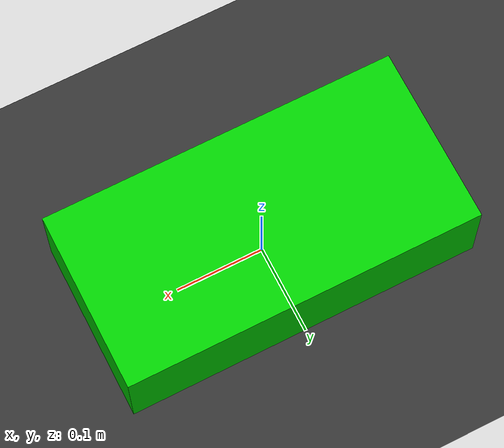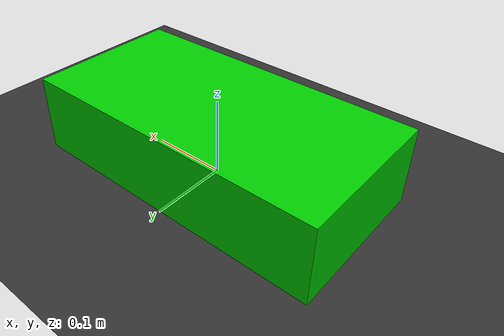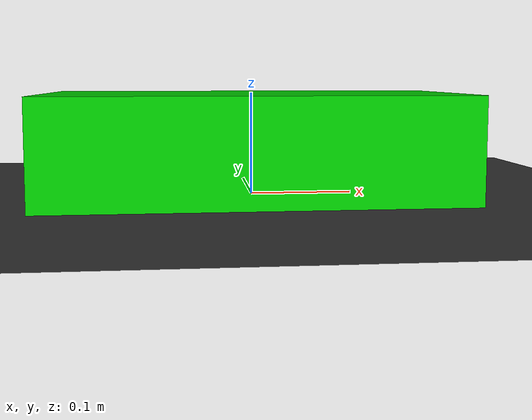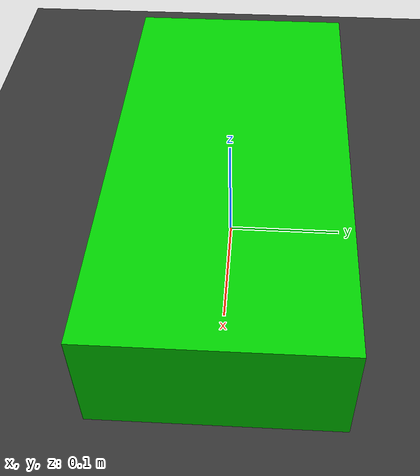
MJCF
<mujoco model="apex_track">
    <compiler angle="radian" coordinate="local"/>
    <option gravity="0 0 -9.81" timestep="0.02" integrator="RK4"/>
    <worldbody>
        <geom name="floor" type="plane" size="50 50 0.1" rgba="0.2 0.2 0.2 1" friction="0.8 0.1 0.1"/>
        <body name="apex_vehicle" pos="0 0 0.05">
            <freejoint name="root"/>
            <inertial pos="0 0 0" mass="1.5" diaginertia="0.01 0.01 0.02"/>
            <geom name="chassis" type="box" size="0.2 0.1 0.05" rgba="0 0.8 0 1"/>
        </body>
    </worldbody>
</mujoco>
